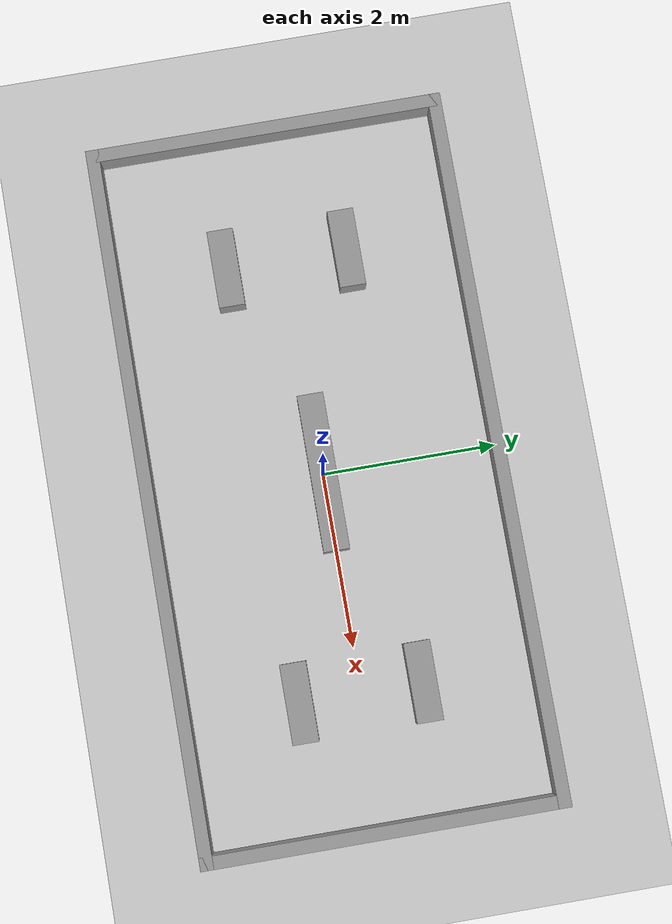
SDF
<?xml version='1.0'?>
<sdf version='1.6'>
  <world name='default'>
    <!-- 保留原有光照配置 -->
    <light name='sun' type='directional'>
      <cast_shadows>1</cast_shadows>
      <pose frame=''>0 0 10 0 -0 0</pose>
      <diffuse>0.8 0.8 0.8 1</diffuse>
      <specular>0.2 0.2 0.2 1</specular>
      <attenuation>
        <range>1000</range>
        <constant>0.9</constant>
        <linear>0.01</linear>
        <quadratic>0.001</quadratic>
      </attenuation>
      <direction>-0.5 0.1 -0.9</direction>
    </light>

    <!-- 保留原有地面配置 -->
    <model name='ground_plane'>
      <static>1</static>
      <link name='link'>
        <collision name='collision'>
          <geometry>
            <plane>
              <normal>0 0 1</normal>
              <size>100 100</size>
            </plane>
          </geometry>
          <surface>
            <contact>
              <collide_bitmask>65535</collide_bitmask>
              <ode/>
            </contact>
            <friction>
              <ode>
                <mu>100</mu>
                <mu2>50</mu2>
              </ode>
              <torsional>
                <ode/>
              </torsional>
            </friction>
            <bounce/>
          </surface>
          <max_contacts>10</max_contacts>
        </collision>
        <visual name='visual'>
          <cast_shadows>0</cast_shadows>
          <geometry>
            <plane>
              <normal>0 0 1</normal>
              <size>100 100</size>
            </plane>
          </geometry>
          <material>
            <script>
              <uri>file://media/materials/scripts/gazebo.material</uri>
              <name>Gazebo/Grey</name>
            </script>
          </material>
        </visual>
        <self_collide>0</self_collide>
        <enable_wind>0</enable_wind>
        <kinematic>0</kinematic>
      </link>
    </model>

    <!-- 保留原有物理/环境配置 -->
    <gravity>0 0 -9.8</gravity>
    <magnetic_field>6e-06 2.3e-05 -4.2e-05</magnetic_field>
    <atmosphere type='adiabatic'/>
    <physics name='default_physics' default='0' type='ode'>
      <max_step_size>0.001</max_step_size>
      <real_time_factor>1</real_time_factor>
      <real_time_update_rate>1000</real_time_update_rate>
    </physics>
    <scene>
      <ambient>0.4 0.4 0.4 1</ambient>
      <background>0.7 0.7 0.7 1</background>
      <shadows>1</shadows>
    </scene>
    <audio>
      <device>default</device>
    </audio>
    <wind/>
    <spherical_coordinates>
      <surface_model>EARTH_WGS84</surface_model>
      <latitude_deg>0</latitude_deg>
      <longitude_deg>0</longitude_deg>
      <elevation>0</elevation>
      <heading_deg>0</heading_deg>
    </spherical_coordinates>

    <!-- 核心修改：模型pose改为(0,0,0)（世界中心） -->
    <model name='basic_place'>
      <pose frame=''>0 0 0 0 -0 0</pose> <!-- 改为世界中心坐标 -->
      <!-- 原有四面围墙 -->
      <link name='Wall_0'>
        <collision name='Wall_0_Collision'>
          <geometry>
            <box>
              <size>4.15 0.15 0.3</size>
            </box>
          </geometry>
          <pose frame=''>0 0 0.15 0 -0 0</pose>
        </collision>
        <visual name='Wall_0_Visual'>
          <pose frame=''>0 0 0.15 0 -0 0</pose>
          <geometry>
            <box>
              <size>4.15 0.15 0.3</size>
            </box>
          </geometry>
          <material>
            <script>
              <uri>file://media/materials/scripts/gazebo.material</uri>
              <name>Gazebo/Grey</name>
            </script>
            <ambient>1 1 1 1</ambient>
          </material>
          <meta>
            <layer>0</layer>
          </meta>
        </visual>
        <pose frame=''>-4.05 0 0 0 -0 1.5708</pose>
        <self_collide>0</self_collide>
        <enable_wind>0</enable_wind>
        <kinematic>0</kinematic>
      </link>
      <link name='Wall_1'>
        <collision name='Wall_1_Collision'>
          <geometry>
            <box>
              <size>8.25 0.15 0.3</size>
            </box>
          </geometry>
          <pose frame=''>0 0 0.15 0 -0 0</pose>
        </collision>
        <visual name='Wall_1_Visual'>
          <pose frame=''>0 0 0.15 0 -0 0</pose>
          <geometry>
            <box>
              <size>8.25 0.15 0.3</size>
            </box>
          </geometry>
          <material>
            <script>
              <uri>file://media/materials/scripts/gazebo.material</uri>
              <name>Gazebo/Grey</name>
            </script>
            <ambient>1 1 1 1</ambient>
          </material>
          <meta>
            <layer>0</layer>
          </meta>
        </visual>
        <pose frame=''>0 2 0 0 -0 0</pose>
        <self_collide>0</self_collide>
        <enable_wind>0</enable_wind>
        <kinematic>0</kinematic>
      </link>
      <link name='Wall_2'>
        <collision name='Wall_2_Collision'>
          <geometry>
            <box>
              <size>4.15 0.15 0.3</size>
            </box>
          </geometry>
          <pose frame=''>0 0 0.15 0 -0 0</pose>
        </collision>
        <visual name='Wall_2_Visual'>
          <pose frame=''>0 0 0.15 0 -0 0</pose>
          <geometry>
            <box>
              <size>4.15 0.15 0.3</size>
            </box>
          </geometry>
          <material>
            <script>
              <uri>file://media/materials/scripts/gazebo.material</uri>
              <name>Gazebo/Grey</name>
            </script>
            <ambient>1 1 1 1</ambient>
          </material>
          <meta>
            <layer>0</layer>
          </meta>
        </visual>
        <pose frame=''>4.05 0 0 0 -0 -1.5708</pose>
        <self_collide>0</self_collide>
        <enable_wind>0</enable_wind>
        <kinematic>0</kinematic>
      </link>
      <link name='Wall_3'>
        <collision name='Wall_3_Collision'>
          <geometry>
            <box>
              <size>8.25 0.15 0.3</size>
            </box>
          </geometry>
          <pose frame=''>0 0 0.15 0 -0 0</pose>
        </collision>
        <visual name='Wall_3_Visual'>
          <pose frame=''>0 0 0.15 0 -0 0</pose>
          <geometry>
            <box>
              <size>8.25 0.15 0.3</size>
            </box>
          </geometry>
          <material>
            <script>
              <uri>file://media/materials/scripts/gazebo.material</uri>
              <name>Gazebo/Grey</name>
            </script>
            <ambient>1 1 1 1</ambient>
          </material>
          <meta>
            <layer>0</layer>
          </meta>
        </visual>
        <pose frame=''>0 -2 0 0 -0 3.14159</pose>
        <self_collide>0</self_collide>
        <enable_wind>0</enable_wind>
        <kinematic>0</kinematic>
      </link>

      <link name='Obstacle_Center'>
        <collision name='Obstacle_Center_Collision'>
          <geometry><box><size>1.80 0.30 0.3</size></box></geometry>
          <pose frame=''>0 0 0.15 0 -0 0</pose>
        </collision>
        <visual name='Obstacle_Center_Visual'>
          <pose frame=''>0 0 0.15 0 -0 0</pose>
          <geometry><box><size>1.80 0.30 0.3</size></box></geometry>
          <material>
            <script>
              <uri>file://media/materials/scripts/gazebo.material</uri>
              <name>Gazebo/Grey</name>
            </script>
          </material>
        </visual>
        <pose frame=''>0 0 0 0 -0 0</pose>
        <self_collide>0</self_collide>
        <enable_wind>0</enable_wind>
        <kinematic>0</kinematic>
      </link>
      <link name='Obstacle_Left_Top'>
        <collision name='Obstacle_Left_Top_Collision'>
          <geometry><box><size>0.90 0.30 0.3</size></box></geometry>
          <pose frame=''>0 0 0.15 0 -0 0</pose>
        </collision>
        <visual name='Obstacle_Left_Top_Visual'>
          <pose frame=''>0 0 0.15 0 -0 0</pose>
          <geometry><box><size>0.90 0.30 0.3</size></box></geometry>
          <material>
            <script>
              <uri>file://media/materials/scripts/gazebo.material</uri>
              <name>Gazebo/Grey</name>
            </script>
          </material>
        </visual>
        <pose frame=''>-2.5  0.7 0 0 -0 0</pose>
        <self_collide>0</self_collide>
        <enable_wind>0</enable_wind>
        <kinematic>0</kinematic>
      </link>
      <link name='Obstacle_Left_Bot'>
        <collision name='Obstacle_Left_Bot_Collision'>
          <geometry><box><size>0.90 0.30 0.3</size></box></geometry>
          <pose frame=''>0 0 0.15 0 -0 0</pose>
        </collision>
        <visual name='Obstacle_Left_Bot_Visual'>
          <pose frame=''>0 0 0.15 0 -0 0</pose>
          <geometry><box><size>0.90 0.30 0.3</size></box></geometry>
          <material>
            <script>
              <uri>file://media/materials/scripts/gazebo.material</uri>
              <name>Gazebo/Grey</name>
            </script>
          </material>
        </visual>
        <pose frame=''>-2.5 -0.7 0 0 -0 0</pose>
        <self_collide>0</self_collide>
        <enable_wind>0</enable_wind>
        <kinematic>0</kinematic>
      </link>
      <link name='Obstacle_Right_Top'>
        <collision name='Obstacle_Right_Top_Collision'>
          <geometry><box><size>0.90 0.30 0.3</size></box></geometry>
          <pose frame=''>0 0 0.15 0 -0 0</pose>
        </collision>
        <visual name='Obstacle_Right_Top_Visual'>
          <pose frame=''>0 0 0.15 0 -0 0</pose>
          <geometry><box><size>0.90 0.30 0.3</size></box></geometry>
          <material>
            <script>
              <uri>file://media/materials/scripts/gazebo.material</uri>
              <name>Gazebo/Grey</name>
            </script>
          </material>
        </visual>
        <pose frame=''>2.5  0.7 0 0 -0 0</pose>
        <self_collide>0</self_collide>
        <enable_wind>0</enable_wind>
        <kinematic>0</kinematic>
      </link>
      <link name='Obstacle_Right_Bot'>
        <collision name='Obstacle_Right_Bot_Collision'>
          <geometry><box><size>0.90 0.30 0.3</size></box></geometry>
          <pose frame=''>0 0 0.15 0 -0 0</pose>
        </collision>
        <visual name='Obstacle_Right_Bot_Visual'>
          <pose frame=''>0 0 0.15 0 -0 0</pose>
          <geometry><box><size>0.90 0.30 0.3</size></box></geometry>
          <material>
            <script>
              <uri>file://media/materials/scripts/gazebo.material</uri>
              <name>Gazebo/Grey</name>
            </script>
          </material>
        </visual>
        <pose frame=''>2.5 -0.7 0 0 -0 0</pose>
        <self_collide>0</self_collide>
        <enable_wind>0</enable_wind>
        <kinematic>0</kinematic>
      </link>

      <static>1</static>
    </model>

    <!-- 保留原有GUI相机配置（可选：也可调整相机视角对准中心） -->
    <gui fullscreen='0'>
      <camera name='user_camera'>
        <pose frame=''>-8 0 4 0 0.2 0</pose> <!-- 调整相机视角对准世界中心 -->
        <view_controller>orbit</view_controller>
        <projection_type>perspective</projection_type>
      </camera>
    </gui>
  </world>
</sdf>
